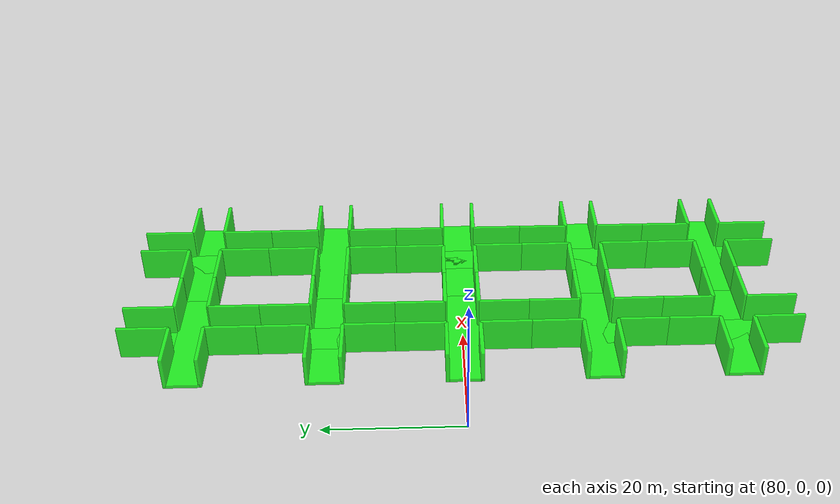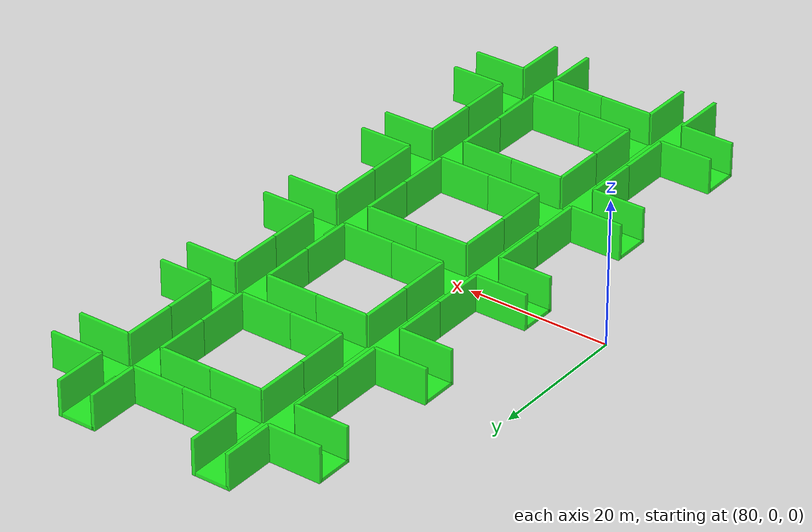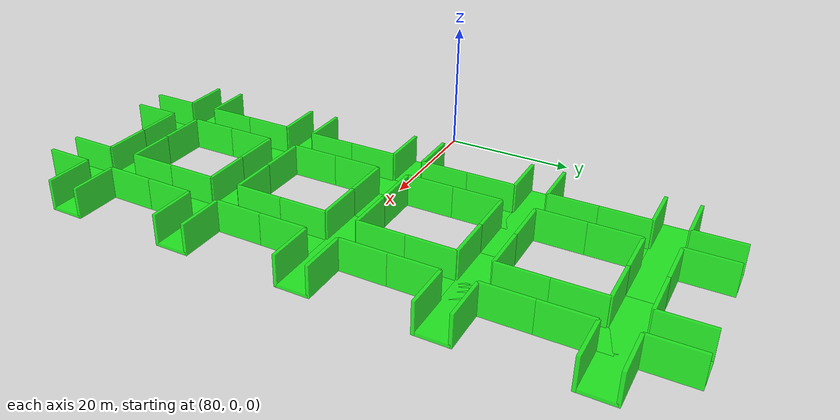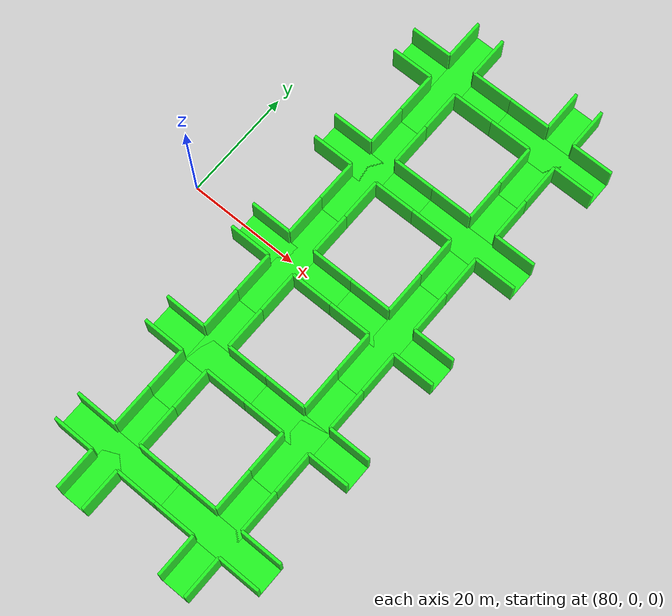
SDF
<sdf version="1.6">
 <world name="default">
  <model name="tile_21">
   <pose>100 -40 0 0 0 1.5707963267948966</pose>
   <static>true</static>
   <link name="link">
    <collision name="collision_0">
     <pose>0 0 -0.25 0 0 0</pose>
     <geometry><box><size>5 20 0.5</size></box></geometry>
    </collision>
    <visual name="visual_0">
     <pose>0 0 -0.25 0 0 0</pose>
     <geometry><box><size>5 20 0.5</size></box></geometry>
     <material><ambient>0 1 0 0.8</ambient><diffuse>0 1 0 0.8</diffuse><specular>1 1 1 0.8</specular></material>
    </visual>
    <collision name="collision_1">
     <pose>0 0 -0.25 0 0 1.57</pose>
     <geometry><box><size>5 20 0.5</size></box></geometry>
    </collision>
    <visual name="visual_1">
     <pose>0 0 -0.25 0 0 1.57</pose>
     <geometry><box><size>5 20 0.5</size></box></geometry>
     <material><ambient>0 1 0 0.8</ambient><diffuse>0 1 0 0.8</diffuse><specular>1 1 1 0.8</specular></material>
    </visual>
    <collision name="collision_2">
     <pose>-2.5 6.25 2 3.14 -1.57 0</pose>
     <geometry><box><size>5 7.5 0.5</size></box></geometry>
    </collision>
    <visual name="visual_2">
     <pose>-2.5 6.25 2 3.14 -1.57 0</pose>
     <geometry><box><size>5 7.5 0.5</size></box></geometry>
     <material><ambient>0 1 0 0.8</ambient><diffuse>0 1 0 0.8</diffuse><specular>1 1 1 0.8</specular></material>
    </visual>
    <collision name="collision_3">
     <pose>2.5 6.25 2 3.14 -1.57 0</pose>
     <geometry><box><size>5 7.5 0.5</size></box></geometry>
    </collision>
    <visual name="visual_3">
     <pose>2.5 6.25 2 3.14 -1.57 0</pose>
     <geometry><box><size>5 7.5 0.5</size></box></geometry>
     <material><ambient>0 1 0 0.8</ambient><diffuse>0 1 0 0.8</diffuse><specular>1 1 1 0.8</specular></material>
    </visual>
    <collision name="collision_4">
     <pose>-2.5 -6.25 2 3.14 -1.57 0</pose>
     <geometry><box><size>5 7.5 0.5</size></box></geometry>
    </collision>
    <visual name="visual_4">
     <pose>-2.5 -6.25 2 3.14 -1.57 0</pose>
     <geometry><box><size>5 7.5 0.5</size></box></geometry>
     <material><ambient>0 1 0 0.8</ambient><diffuse>0 1 0 0.8</diffuse><specular>1 1 1 0.8</specular></material>
    </visual>
    <collision name="collision_5">
     <pose>2.5 -6.25 2 3.14 -1.57 0</pose>
     <geometry><box><size>5 7.5 0.5</size></box></geometry>
    </collision>
    <visual name="visual_5">
     <pose>2.5 -6.25 2 3.14 -1.57 0</pose>
     <geometry><box><size>5 7.5 0.5</size></box></geometry>
     <material><ambient>0 1 0 0.8</ambient><diffuse>0 1 0 0.8</diffuse><specular>1 1 1 0.8</specular></material>
    </visual>
    <collision name="collision_6">
     <pose>6.25 2.5 2 1.57 1.57 0</pose>
     <geometry><box><size>5 7.5 0.5</size></box></geometry>
    </collision>
    <visual name="visual_6">
     <pose>6.25 2.5 2 1.57 1.57 0</pose>
     <geometry><box><size>5 7.5 0.5</size></box></geometry>
     <material><ambient>0 1 0 0.8</ambient><diffuse>0 1 0 0.8</diffuse><specular>1 1 1 0.8</specular></material>
    </visual>
    <collision name="collision_7">
     <pose>-6.25 2.5 2 1.57 1.57 0</pose>
     <geometry><box><size>5 7.5 0.5</size></box></geometry>
    </collision>
    <visual name="visual_7">
     <pose>-6.25 2.5 2 1.57 1.57 0</pose>
     <geometry><box><size>5 7.5 0.5</size></box></geometry>
     <material><ambient>0 1 0 0.8</ambient><diffuse>0 1 0 0.8</diffuse><specular>1 1 1 0.8</specular></material>
    </visual>
    <collision name="collision_8">
     <pose>6.25 -2.5 2 1.57 1.57 0</pose>
     <geometry><box><size>5 7.5 0.5</size></box></geometry>
    </collision>
    <visual name="visual_8">
     <pose>6.25 -2.5 2 1.57 1.57 0</pose>
     <geometry><box><size>5 7.5 0.5</size></box></geometry>
     <material><ambient>0 1 0 0.8</ambient><diffuse>0 1 0 0.8</diffuse><specular>1 1 1 0.8</specular></material>
    </visual>
    <collision name="collision_9">
     <pose>-6.25 -2.5 2 1.57 1.57 0</pose>
     <geometry><box><size>5 7.5 0.5</size></box></geometry>
    </collision>
    <visual name="visual_9">
     <pose>-6.25 -2.5 2 1.57 1.57 0</pose>
     <geometry><box><size>5 7.5 0.5</size></box></geometry>
     <material><ambient>0 1 0 0.8</ambient><diffuse>0 1 0 0.8</diffuse><specular>1 1 1 0.8</specular></material>
    </visual>
   </link>
  </model>
  <model name="tile_22">
   <pose>100 -20 0 0 0 -1.5707963267948966</pose>
   <static>true</static>
   <link name="link">
    <collision name="collision_0">
     <pose>0 0 -0.25 0 0 0</pose>
     <geometry><box><size>5 20 0.5</size></box></geometry>
    </collision>
    <visual name="visual_0">
     <pose>0 0 -0.25 0 0 0</pose>
     <geometry><box><size>5 20 0.5</size></box></geometry>
     <material><ambient>0 1 0 0.8</ambient><diffuse>0 1 0 0.8</diffuse><specular>1 1 1 0.8</specular></material>
    </visual>
    <collision name="collision_1">
     <pose>0 0 -0.25 0 0 1.57</pose>
     <geometry><box><size>5 20 0.5</size></box></geometry>
    </collision>
    <visual name="visual_1">
     <pose>0 0 -0.25 0 0 1.57</pose>
     <geometry><box><size>5 20 0.5</size></box></geometry>
     <material><ambient>0 1 0 0.8</ambient><diffuse>0 1 0 0.8</diffuse><specular>1 1 1 0.8</specular></material>
    </visual>
    <collision name="collision_2">
     <pose>-2.5 6.25 2 3.14 -1.57 0</pose>
     <geometry><box><size>5 7.5 0.5</size></box></geometry>
    </collision>
    <visual name="visual_2">
     <pose>-2.5 6.25 2 3.14 -1.57 0</pose>
     <geometry><box><size>5 7.5 0.5</size></box></geometry>
     <material><ambient>0 1 0 0.8</ambient><diffuse>0 1 0 0.8</diffuse><specular>1 1 1 0.8</specular></material>
    </visual>
    <collision name="collision_3">
     <pose>2.5 6.25 2 3.14 -1.57 0</pose>
     <geometry><box><size>5 7.5 0.5</size></box></geometry>
    </collision>
    <visual name="visual_3">
     <pose>2.5 6.25 2 3.14 -1.57 0</pose>
     <geometry><box><size>5 7.5 0.5</size></box></geometry>
     <material><ambient>0 1 0 0.8</ambient><diffuse>0 1 0 0.8</diffuse><specular>1 1 1 0.8</specular></material>
    </visual>
    <collision name="collision_4">
     <pose>-2.5 -6.25 2 3.14 -1.57 0</pose>
     <geometry><box><size>5 7.5 0.5</size></box></geometry>
    </collision>
    <visual name="visual_4">
     <pose>-2.5 -6.25 2 3.14 -1.57 0</pose>
     <geometry><box><size>5 7.5 0.5</size></box></geometry>
     <material><ambient>0 1 0 0.8</ambient><diffuse>0 1 0 0.8</diffuse><specular>1 1 1 0.8</specular></material>
    </visual>
    <collision name="collision_5">
     <pose>2.5 -6.25 2 3.14 -1.57 0</pose>
     <geometry><box><size>5 7.5 0.5</size></box></geometry>
    </collision>
    <visual name="visual_5">
     <pose>2.5 -6.25 2 3.14 -1.57 0</pose>
     <geometry><box><size>5 7.5 0.5</size></box></geometry>
     <material><ambient>0 1 0 0.8</ambient><diffuse>0 1 0 0.8</diffuse><specular>1 1 1 0.8</specular></material>
    </visual>
    <collision name="collision_6">
     <pose>6.25 2.5 2 1.57 1.57 0</pose>
     <geometry><box><size>5 7.5 0.5</size></box></geometry>
    </collision>
    <visual name="visual_6">
     <pose>6.25 2.5 2 1.57 1.57 0</pose>
     <geometry><box><size>5 7.5 0.5</size></box></geometry>
     <material><ambient>0 1 0 0.8</ambient><diffuse>0 1 0 0.8</diffuse><specular>1 1 1 0.8</specular></material>
    </visual>
    <collision name="collision_7">
     <pose>-6.25 2.5 2 1.57 1.57 0</pose>
     <geometry><box><size>5 7.5 0.5</size></box></geometry>
    </collision>
    <visual name="visual_7">
     <pose>-6.25 2.5 2 1.57 1.57 0</pose>
     <geometry><box><size>5 7.5 0.5</size></box></geometry>
     <material><ambient>0 1 0 0.8</ambient><diffuse>0 1 0 0.8</diffuse><specular>1 1 1 0.8</specular></material>
    </visual>
    <collision name="collision_8">
     <pose>6.25 -2.5 2 1.57 1.57 0</pose>
     <geometry><box><size>5 7.5 0.5</size></box></geometry>
    </collision>
    <visual name="visual_8">
     <pose>6.25 -2.5 2 1.57 1.57 0</pose>
     <geometry><box><size>5 7.5 0.5</size></box></geometry>
     <material><ambient>0 1 0 0.8</ambient><diffuse>0 1 0 0.8</diffuse><specular>1 1 1 0.8</specular></material>
    </visual>
    <collision name="collision_9">
     <pose>-6.25 -2.5 2 1.57 1.57 0</pose>
     <geometry><box><size>5 7.5 0.5</size></box></geometry>
    </collision>
    <visual name="visual_9">
     <pose>-6.25 -2.5 2 1.57 1.57 0</pose>
     <geometry><box><size>5 7.5 0.5</size></box></geometry>
     <material><ambient>0 1 0 0.8</ambient><diffuse>0 1 0 0.8</diffuse><specular>1 1 1 0.8</specular></material>
    </visual>
   </link>
  </model>
  <model name="tile_23">
   <pose>100 0 0 0 0 3.141592653589793</pose>
   <static>true</static>
   <link name="link">
    <collision name="collision_0">
     <pose>0 0 -0.25 0 0 0</pose>
     <geometry><box><size>5 20 0.5</size></box></geometry>
    </collision>
    <visual name="visual_0">
     <pose>0 0 -0.25 0 0 0</pose>
     <geometry><box><size>5 20 0.5</size></box></geometry>
     <material><ambient>0 1 0 0.8</ambient><diffuse>0 1 0 0.8</diffuse><specular>1 1 1 0.8</specular></material>
    </visual>
    <collision name="collision_1">
     <pose>0 0 -0.25 0 0 1.57</pose>
     <geometry><box><size>5 20 0.5</size></box></geometry>
    </collision>
    <visual name="visual_1">
     <pose>0 0 -0.25 0 0 1.57</pose>
     <geometry><box><size>5 20 0.5</size></box></geometry>
     <material><ambient>0 1 0 0.8</ambient><diffuse>0 1 0 0.8</diffuse><specular>1 1 1 0.8</specular></material>
    </visual>
    <collision name="collision_2">
     <pose>-2.5 6.25 2 3.14 -1.57 0</pose>
     <geometry><box><size>5 7.5 0.5</size></box></geometry>
    </collision>
    <visual name="visual_2">
     <pose>-2.5 6.25 2 3.14 -1.57 0</pose>
     <geometry><box><size>5 7.5 0.5</size></box></geometry>
     <material><ambient>0 1 0 0.8</ambient><diffuse>0 1 0 0.8</diffuse><specular>1 1 1 0.8</specular></material>
    </visual>
    <collision name="collision_3">
     <pose>2.5 6.25 2 3.14 -1.57 0</pose>
     <geometry><box><size>5 7.5 0.5</size></box></geometry>
    </collision>
    <visual name="visual_3">
     <pose>2.5 6.25 2 3.14 -1.57 0</pose>
     <geometry><box><size>5 7.5 0.5</size></box></geometry>
     <material><ambient>0 1 0 0.8</ambient><diffuse>0 1 0 0.8</diffuse><specular>1 1 1 0.8</specular></material>
    </visual>
    <collision name="collision_4">
     <pose>-2.5 -6.25 2 3.14 -1.57 0</pose>
     <geometry><box><size>5 7.5 0.5</size></box></geometry>
    </collision>
    <visual name="visual_4">
     <pose>-2.5 -6.25 2 3.14 -1.57 0</pose>
     <geometry><box><size>5 7.5 0.5</size></box></geometry>
     <material><ambient>0 1 0 0.8</ambient><diffuse>0 1 0 0.8</diffuse><specular>1 1 1 0.8</specular></material>
    </visual>
    <collision name="collision_5">
     <pose>2.5 -6.25 2 3.14 -1.57 0</pose>
     <geometry><box><size>5 7.5 0.5</size></box></geometry>
    </collision>
    <visual name="visual_5">
     <pose>2.5 -6.25 2 3.14 -1.57 0</pose>
     <geometry><box><size>5 7.5 0.5</size></box></geometry>
     <material><ambient>0 1 0 0.8</ambient><diffuse>0 1 0 0.8</diffuse><specular>1 1 1 0.8</specular></material>
    </visual>
    <collision name="collision_6">
     <pose>6.25 2.5 2 1.57 1.57 0</pose>
     <geometry><box><size>5 7.5 0.5</size></box></geometry>
    </collision>
    <visual name="visual_6">
     <pose>6.25 2.5 2 1.57 1.57 0</pose>
     <geometry><box><size>5 7.5 0.5</size></box></geometry>
     <material><ambient>0 1 0 0.8</ambient><diffuse>0 1 0 0.8</diffuse><specular>1 1 1 0.8</specular></material>
    </visual>
    <collision name="collision_7">
     <pose>-6.25 2.5 2 1.57 1.57 0</pose>
     <geometry><box><size>5 7.5 0.5</size></box></geometry>
    </collision>
    <visual name="visual_7">
     <pose>-6.25 2.5 2 1.57 1.57 0</pose>
     <geometry><box><size>5 7.5 0.5</size></box></geometry>
     <material><ambient>0 1 0 0.8</ambient><diffuse>0 1 0 0.8</diffuse><specular>1 1 1 0.8</specular></material>
    </visual>
    <collision name="collision_8">
     <pose>6.25 -2.5 2 1.57 1.57 0</pose>
     <geometry><box><size>5 7.5 0.5</size></box></geometry>
    </collision>
    <visual name="visual_8">
     <pose>6.25 -2.5 2 1.57 1.57 0</pose>
     <geometry><box><size>5 7.5 0.5</size></box></geometry>
     <material><ambient>0 1 0 0.8</ambient><diffuse>0 1 0 0.8</diffuse><specular>1 1 1 0.8</specular></material>
    </visual>
    <collision name="collision_9">
     <pose>-6.25 -2.5 2 1.57 1.57 0</pose>
     <geometry><box><size>5 7.5 0.5</size></box></geometry>
    </collision>
    <visual name="visual_9">
     <pose>-6.25 -2.5 2 1.57 1.57 0</pose>
     <geometry><box><size>5 7.5 0.5</size></box></geometry>
     <material><ambient>0 1 0 0.8</ambient><diffuse>0 1 0 0.8</diffuse><specular>1 1 1 0.8</specular></material>
    </visual>
   </link>
  </model>
  <model name="tile_24">
   <pose>100 20 0 0 0 0</pose>
   <static>true</static>
   <link name="link">
    <collision name="collision_0">
     <pose>0 0 -0.25 0 0 0</pose>
     <geometry><box><size>5 20 0.5</size></box></geometry>
    </collision>
    <visual name="visual_0">
     <pose>0 0 -0.25 0 0 0</pose>
     <geometry><box><size>5 20 0.5</size></box></geometry>
     <material><ambient>0 1 0 0.8</ambient><diffuse>0 1 0 0.8</diffuse><specular>1 1 1 0.8</specular></material>
    </visual>
    <collision name="collision_1">
     <pose>0 0 -0.25 0 0 1.57</pose>
     <geometry><box><size>5 20 0.5</size></box></geometry>
    </collision>
    <visual name="visual_1">
     <pose>0 0 -0.25 0 0 1.57</pose>
     <geometry><box><size>5 20 0.5</size></box></geometry>
     <material><ambient>0 1 0 0.8</ambient><diffuse>0 1 0 0.8</diffuse><specular>1 1 1 0.8</specular></material>
    </visual>
    <collision name="collision_2">
     <pose>-2.5 6.25 2 3.14 -1.57 0</pose>
     <geometry><box><size>5 7.5 0.5</size></box></geometry>
    </collision>
    <visual name="visual_2">
     <pose>-2.5 6.25 2 3.14 -1.57 0</pose>
     <geometry><box><size>5 7.5 0.5</size></box></geometry>
     <material><ambient>0 1 0 0.8</ambient><diffuse>0 1 0 0.8</diffuse><specular>1 1 1 0.8</specular></material>
    </visual>
    <collision name="collision_3">
     <pose>2.5 6.25 2 3.14 -1.57 0</pose>
     <geometry><box><size>5 7.5 0.5</size></box></geometry>
    </collision>
    <visual name="visual_3">
     <pose>2.5 6.25 2 3.14 -1.57 0</pose>
     <geometry><box><size>5 7.5 0.5</size></box></geometry>
     <material><ambient>0 1 0 0.8</ambient><diffuse>0 1 0 0.8</diffuse><specular>1 1 1 0.8</specular></material>
    </visual>
    <collision name="collision_4">
     <pose>-2.5 -6.25 2 3.14 -1.57 0</pose>
     <geometry><box><size>5 7.5 0.5</size></box></geometry>
    </collision>
    <visual name="visual_4">
     <pose>-2.5 -6.25 2 3.14 -1.57 0</pose>
     <geometry><box><size>5 7.5 0.5</size></box></geometry>
     <material><ambient>0 1 0 0.8</ambient><diffuse>0 1 0 0.8</diffuse><specular>1 1 1 0.8</specular></material>
    </visual>
    <collision name="collision_5">
     <pose>2.5 -6.25 2 3.14 -1.57 0</pose>
     <geometry><box><size>5 7.5 0.5</size></box></geometry>
    </collision>
    <visual name="visual_5">
     <pose>2.5 -6.25 2 3.14 -1.57 0</pose>
     <geometry><box><size>5 7.5 0.5</size></box></geometry>
     <material><ambient>0 1 0 0.8</ambient><diffuse>0 1 0 0.8</diffuse><specular>1 1 1 0.8</specular></material>
    </visual>
    <collision name="collision_6">
     <pose>6.25 2.5 2 1.57 1.57 0</pose>
     <geometry><box><size>5 7.5 0.5</size></box></geometry>
    </collision>
    <visual name="visual_6">
     <pose>6.25 2.5 2 1.57 1.57 0</pose>
     <geometry><box><size>5 7.5 0.5</size></box></geometry>
     <material><ambient>0 1 0 0.8</ambient><diffuse>0 1 0 0.8</diffuse><specular>1 1 1 0.8</specular></material>
    </visual>
    <collision name="collision_7">
     <pose>-6.25 2.5 2 1.57 1.57 0</pose>
     <geometry><box><size>5 7.5 0.5</size></box></geometry>
    </collision>
    <visual name="visual_7">
     <pose>-6.25 2.5 2 1.57 1.57 0</pose>
     <geometry><box><size>5 7.5 0.5</size></box></geometry>
     <material><ambient>0 1 0 0.8</ambient><diffuse>0 1 0 0.8</diffuse><specular>1 1 1 0.8</specular></material>
    </visual>
    <collision name="collision_8">
     <pose>6.25 -2.5 2 1.57 1.57 0</pose>
     <geometry><box><size>5 7.5 0.5</size></box></geometry>
    </collision>
    <visual name="visual_8">
     <pose>6.25 -2.5 2 1.57 1.57 0</pose>
     <geometry><box><size>5 7.5 0.5</size></box></geometry>
     <material><ambient>0 1 0 0.8</ambient><diffuse>0 1 0 0.8</diffuse><specular>1 1 1 0.8</specular></material>
    </visual>
    <collision name="collision_9">
     <pose>-6.25 -2.5 2 1.57 1.57 0</pose>
     <geometry><box><size>5 7.5 0.5</size></box></geometry>
    </collision>
    <visual name="visual_9">
     <pose>-6.25 -2.5 2 1.57 1.57 0</pose>
     <geometry><box><size>5 7.5 0.5</size></box></geometry>
     <material><ambient>0 1 0 0.8</ambient><diffuse>0 1 0 0.8</diffuse><specular>1 1 1 0.8</specular></material>
    </visual>
   </link>
  </model>
  <model name="tile_25">
   <pose>100 40 0 0 0 0</pose>
   <static>true</static>
   <link name="link">
    <collision name="collision_0">
     <pose>0 0 -0.25 0 0 0</pose>
     <geometry><box><size>5 20 0.5</size></box></geometry>
    </collision>
    <visual name="visual_0">
     <pose>0 0 -0.25 0 0 0</pose>
     <geometry><box><size>5 20 0.5</size></box></geometry>
     <material><ambient>0 1 0 0.8</ambient><diffuse>0 1 0 0.8</diffuse><specular>1 1 1 0.8</specular></material>
    </visual>
    <collision name="collision_1">
     <pose>0 0 -0.25 0 0 1.57</pose>
     <geometry><box><size>5 20 0.5</size></box></geometry>
    </collision>
    <visual name="visual_1">
     <pose>0 0 -0.25 0 0 1.57</pose>
     <geometry><box><size>5 20 0.5</size></box></geometry>
     <material><ambient>0 1 0 0.8</ambient><diffuse>0 1 0 0.8</diffuse><specular>1 1 1 0.8</specular></material>
    </visual>
    <collision name="collision_2">
     <pose>-2.5 6.25 2 3.14 -1.57 0</pose>
     <geometry><box><size>5 7.5 0.5</size></box></geometry>
    </collision>
    <visual name="visual_2">
     <pose>-2.5 6.25 2 3.14 -1.57 0</pose>
     <geometry><box><size>5 7.5 0.5</size></box></geometry>
     <material><ambient>0 1 0 0.8</ambient><diffuse>0 1 0 0.8</diffuse><specular>1 1 1 0.8</specular></material>
    </visual>
    <collision name="collision_3">
     <pose>2.5 6.25 2 3.14 -1.57 0</pose>
     <geometry><box><size>5 7.5 0.5</size></box></geometry>
    </collision>
    <visual name="visual_3">
     <pose>2.5 6.25 2 3.14 -1.57 0</pose>
     <geometry><box><size>5 7.5 0.5</size></box></geometry>
     <material><ambient>0 1 0 0.8</ambient><diffuse>0 1 0 0.8</diffuse><specular>1 1 1 0.8</specular></material>
    </visual>
    <collision name="collision_4">
     <pose>-2.5 -6.25 2 3.14 -1.57 0</pose>
     <geometry><box><size>5 7.5 0.5</size></box></geometry>
    </collision>
    <visual name="visual_4">
     <pose>-2.5 -6.25 2 3.14 -1.57 0</pose>
     <geometry><box><size>5 7.5 0.5</size></box></geometry>
     <material><ambient>0 1 0 0.8</ambient><diffuse>0 1 0 0.8</diffuse><specular>1 1 1 0.8</specular></material>
    </visual>
    <collision name="collision_5">
     <pose>2.5 -6.25 2 3.14 -1.57 0</pose>
     <geometry><box><size>5 7.5 0.5</size></box></geometry>
    </collision>
    <visual name="visual_5">
     <pose>2.5 -6.25 2 3.14 -1.57 0</pose>
     <geometry><box><size>5 7.5 0.5</size></box></geometry>
     <material><ambient>0 1 0 0.8</ambient><diffuse>0 1 0 0.8</diffuse><specular>1 1 1 0.8</specular></material>
    </visual>
    <collision name="collision_6">
     <pose>6.25 2.5 2 1.57 1.57 0</pose>
     <geometry><box><size>5 7.5 0.5</size></box></geometry>
    </collision>
    <visual name="visual_6">
     <pose>6.25 2.5 2 1.57 1.57 0</pose>
     <geometry><box><size>5 7.5 0.5</size></box></geometry>
     <material><ambient>0 1 0 0.8</ambient><diffuse>0 1 0 0.8</diffuse><specular>1 1 1 0.8</specular></material>
    </visual>
    <collision name="collision_7">
     <pose>-6.25 2.5 2 1.57 1.57 0</pose>
     <geometry><box><size>5 7.5 0.5</size></box></geometry>
    </collision>
    <visual name="visual_7">
     <pose>-6.25 2.5 2 1.57 1.57 0</pose>
     <geometry><box><size>5 7.5 0.5</size></box></geometry>
     <material><ambient>0 1 0 0.8</ambient><diffuse>0 1 0 0.8</diffuse><specular>1 1 1 0.8</specular></material>
    </visual>
    <collision name="collision_8">
     <pose>6.25 -2.5 2 1.57 1.57 0</pose>
     <geometry><box><size>5 7.5 0.5</size></box></geometry>
    </collision>
    <visual name="visual_8">
     <pose>6.25 -2.5 2 1.57 1.57 0</pose>
     <geometry><box><size>5 7.5 0.5</size></box></geometry>
     <material><ambient>0 1 0 0.8</ambient><diffuse>0 1 0 0.8</diffuse><specular>1 1 1 0.8</specular></material>
    </visual>
    <collision name="collision_9">
     <pose>-6.25 -2.5 2 1.57 1.57 0</pose>
     <geometry><box><size>5 7.5 0.5</size></box></geometry>
    </collision>
    <visual name="visual_9">
     <pose>-6.25 -2.5 2 1.57 1.57 0</pose>
     <geometry><box><size>5 7.5 0.5</size></box></geometry>
     <material><ambient>0 1 0 0.8</ambient><diffuse>0 1 0 0.8</diffuse><specular>1 1 1 0.8</specular></material>
    </visual>
   </link>
  </model>
  <model name="tile_26">
   <pose>120 -40 0 0 0 3.141592653589793</pose>
   <static>true</static>
   <link name="link">
    <collision name="collision_0">
     <pose>0 0 -0.25 0 0 0</pose>
     <geometry><box><size>5 20 0.5</size></box></geometry>
    </collision>
    <visual name="visual_0">
     <pose>0 0 -0.25 0 0 0</pose>
     <geometry><box><size>5 20 0.5</size></box></geometry>
     <material><ambient>0 1 0 0.8</ambient><diffuse>0 1 0 0.8</diffuse><specular>1 1 1 0.8</specular></material>
    </visual>
    <collision name="collision_1">
     <pose>0 0 -0.25 0 0 1.57</pose>
     <geometry><box><size>5 20 0.5</size></box></geometry>
    </collision>
    <visual name="visual_1">
     <pose>0 0 -0.25 0 0 1.57</pose>
     <geometry><box><size>5 20 0.5</size></box></geometry>
     <material><ambient>0 1 0 0.8</ambient><diffuse>0 1 0 0.8</diffuse><specular>1 1 1 0.8</specular></material>
    </visual>
    <collision name="collision_2">
     <pose>-2.5 6.25 2 3.14 -1.57 0</pose>
     <geometry><box><size>5 7.5 0.5</size></box></geometry>
    </collision>
    <visual name="visual_2">
     <pose>-2.5 6.25 2 3.14 -1.57 0</pose>
     <geometry><box><size>5 7.5 0.5</size></box></geometry>
     <material><ambient>0 1 0 0.8</ambient><diffuse>0 1 0 0.8</diffuse><specular>1 1 1 0.8</specular></material>
    </visual>
    <collision name="collision_3">
     <pose>2.5 6.25 2 3.14 -1.57 0</pose>
     <geometry><box><size>5 7.5 0.5</size></box></geometry>
    </collision>
    <visual name="visual_3">
     <pose>2.5 6.25 2 3.14 -1.57 0</pose>
     <geometry><box><size>5 7.5 0.5</size></box></geometry>
     <material><ambient>0 1 0 0.8</ambient><diffuse>0 1 0 0.8</diffuse><specular>1 1 1 0.8</specular></material>
    </visual>
    <collision name="collision_4">
     <pose>-2.5 -6.25 2 3.14 -1.57 0</pose>
     <geometry><box><size>5 7.5 0.5</size></box></geometry>
    </collision>
    <visual name="visual_4">
     <pose>-2.5 -6.25 2 3.14 -1.57 0</pose>
     <geometry><box><size>5 7.5 0.5</size></box></geometry>
     <material><ambient>0 1 0 0.8</ambient><diffuse>0 1 0 0.8</diffuse><specular>1 1 1 0.8</specular></material>
    </visual>
    <collision name="collision_5">
     <pose>2.5 -6.25 2 3.14 -1.57 0</pose>
     <geometry><box><size>5 7.5 0.5</size></box></geometry>
    </collision>
    <visual name="visual_5">
     <pose>2.5 -6.25 2 3.14 -1.57 0</pose>
     <geometry><box><size>5 7.5 0.5</size></box></geometry>
     <material><ambient>0 1 0 0.8</ambient><diffuse>0 1 0 0.8</diffuse><specular>1 1 1 0.8</specular></material>
    </visual>
    <collision name="collision_6">
     <pose>6.25 2.5 2 1.57 1.57 0</pose>
     <geometry><box><size>5 7.5 0.5</size></box></geometry>
    </collision>
    <visual name="visual_6">
     <pose>6.25 2.5 2 1.57 1.57 0</pose>
     <geometry><box><size>5 7.5 0.5</size></box></geometry>
     <material><ambient>0 1 0 0.8</ambient><diffuse>0 1 0 0.8</diffuse><specular>1 1 1 0.8</specular></material>
    </visual>
    <collision name="collision_7">
     <pose>-6.25 2.5 2 1.57 1.57 0</pose>
     <geometry><box><size>5 7.5 0.5</size></box></geometry>
    </collision>
    <visual name="visual_7">
     <pose>-6.25 2.5 2 1.57 1.57 0</pose>
     <geometry><box><size>5 7.5 0.5</size></box></geometry>
     <material><ambient>0 1 0 0.8</ambient><diffuse>0 1 0 0.8</diffuse><specular>1 1 1 0.8</specular></material>
    </visual>
    <collision name="collision_8">
     <pose>6.25 -2.5 2 1.57 1.57 0</pose>
     <geometry><box><size>5 7.5 0.5</size></box></geometry>
    </collision>
    <visual name="visual_8">
     <pose>6.25 -2.5 2 1.57 1.57 0</pose>
     <geometry><box><size>5 7.5 0.5</size></box></geometry>
     <material><ambient>0 1 0 0.8</ambient><diffuse>0 1 0 0.8</diffuse><specular>1 1 1 0.8</specular></material>
    </visual>
    <collision name="collision_9">
     <pose>-6.25 -2.5 2 1.57 1.57 0</pose>
     <geometry><box><size>5 7.5 0.5</size></box></geometry>
    </collision>
    <visual name="visual_9">
     <pose>-6.25 -2.5 2 1.57 1.57 0</pose>
     <geometry><box><size>5 7.5 0.5</size></box></geometry>
     <material><ambient>0 1 0 0.8</ambient><diffuse>0 1 0 0.8</diffuse><specular>1 1 1 0.8</specular></material>
    </visual>
   </link>
  </model>
  <model name="tile_27">
   <pose>120 -20 0 0 0 3.141592653589793</pose>
   <static>true</static>
   <link name="link">
    <collision name="collision_0">
     <pose>0 0 -0.25 0 0 0</pose>
     <geometry><box><size>5 20 0.5</size></box></geometry>
    </collision>
    <visual name="visual_0">
     <pose>0 0 -0.25 0 0 0</pose>
     <geometry><box><size>5 20 0.5</size></box></geometry>
     <material><ambient>0 1 0 0.8</ambient><diffuse>0 1 0 0.8</diffuse><specular>1 1 1 0.8</specular></material>
    </visual>
    <collision name="collision_1">
     <pose>0 0 -0.25 0 0 1.57</pose>
     <geometry><box><size>5 20 0.5</size></box></geometry>
    </collision>
    <visual name="visual_1">
     <pose>0 0 -0.25 0 0 1.57</pose>
     <geometry><box><size>5 20 0.5</size></box></geometry>
     <material><ambient>0 1 0 0.8</ambient><diffuse>0 1 0 0.8</diffuse><specular>1 1 1 0.8</specular></material>
    </visual>
    <collision name="collision_2">
     <pose>-2.5 6.25 2 3.14 -1.57 0</pose>
     <geometry><box><size>5 7.5 0.5</size></box></geometry>
    </collision>
    <visual name="visual_2">
     <pose>-2.5 6.25 2 3.14 -1.57 0</pose>
     <geometry><box><size>5 7.5 0.5</size></box></geometry>
     <material><ambient>0 1 0 0.8</ambient><diffuse>0 1 0 0.8</diffuse><specular>1 1 1 0.8</specular></material>
    </visual>
    <collision name="collision_3">
     <pose>2.5 6.25 2 3.14 -1.57 0</pose>
     <geometry><box><size>5 7.5 0.5</size></box></geometry>
    </collision>
    <visual name="visual_3">
     <pose>2.5 6.25 2 3.14 -1.57 0</pose>
     <geometry><box><size>5 7.5 0.5</size></box></geometry>
     <material><ambient>0 1 0 0.8</ambient><diffuse>0 1 0 0.8</diffuse><specular>1 1 1 0.8</specular></material>
    </visual>
    <collision name="collision_4">
     <pose>-2.5 -6.25 2 3.14 -1.57 0</pose>
     <geometry><box><size>5 7.5 0.5</size></box></geometry>
    </collision>
    <visual name="visual_4">
     <pose>-2.5 -6.25 2 3.14 -1.57 0</pose>
     <geometry><box><size>5 7.5 0.5</size></box></geometry>
     <material><ambient>0 1 0 0.8</ambient><diffuse>0 1 0 0.8</diffuse><specular>1 1 1 0.8</specular></material>
    </visual>
    <collision name="collision_5">
     <pose>2.5 -6.25 2 3.14 -1.57 0</pose>
     <geometry><box><size>5 7.5 0.5</size></box></geometry>
    </collision>
    <visual name="visual_5">
     <pose>2.5 -6.25 2 3.14 -1.57 0</pose>
     <geometry><box><size>5 7.5 0.5</size></box></geometry>
     <material><ambient>0 1 0 0.8</ambient><diffuse>0 1 0 0.8</diffuse><specular>1 1 1 0.8</specular></material>
    </visual>
    <collision name="collision_6">
     <pose>6.25 2.5 2 1.57 1.57 0</pose>
     <geometry><box><size>5 7.5 0.5</size></box></geometry>
    </collision>
    <visual name="visual_6">
     <pose>6.25 2.5 2 1.57 1.57 0</pose>
     <geometry><box><size>5 7.5 0.5</size></box></geometry>
     <material><ambient>0 1 0 0.8</ambient><diffuse>0 1 0 0.8</diffuse><specular>1 1 1 0.8</specular></material>
    </visual>
    <collision name="collision_7">
     <pose>-6.25 2.5 2 1.57 1.57 0</pose>
     <geometry><box><size>5 7.5 0.5</size></box></geometry>
    </collision>
    <visual name="visual_7">
     <pose>-6.25 2.5 2 1.57 1.57 0</pose>
     <geometry><box><size>5 7.5 0.5</size></box></geometry>
     <material><ambient>0 1 0 0.8</ambient><diffuse>0 1 0 0.8</diffuse><specular>1 1 1 0.8</specular></material>
    </visual>
    <collision name="collision_8">
     <pose>6.25 -2.5 2 1.57 1.57 0</pose>
     <geometry><box><size>5 7.5 0.5</size></box></geometry>
    </collision>
    <visual name="visual_8">
     <pose>6.25 -2.5 2 1.57 1.57 0</pose>
     <geometry><box><size>5 7.5 0.5</size></box></geometry>
     <material><ambient>0 1 0 0.8</ambient><diffuse>0 1 0 0.8</diffuse><specular>1 1 1 0.8</specular></material>
    </visual>
    <collision name="collision_9">
     <pose>-6.25 -2.5 2 1.57 1.57 0</pose>
     <geometry><box><size>5 7.5 0.5</size></box></geometry>
    </collision>
    <visual name="visual_9">
     <pose>-6.25 -2.5 2 1.57 1.57 0</pose>
     <geometry><box><size>5 7.5 0.5</size></box></geometry>
     <material><ambient>0 1 0 0.8</ambient><diffuse>0 1 0 0.8</diffuse><specular>1 1 1 0.8</specular></material>
    </visual>
   </link>
  </model>
  <model name="tile_28">
   <pose>120 0 0 0 0 3.141592653589793</pose>
   <static>true</static>
   <link name="link">
    <collision name="collision_0">
     <pose>0 0 -0.25 0 0 0</pose>
     <geometry><box><size>5 20 0.5</size></box></geometry>
    </collision>
    <visual name="visual_0">
     <pose>0 0 -0.25 0 0 0</pose>
     <geometry><box><size>5 20 0.5</size></box></geometry>
     <material><ambient>0 1 0 0.8</ambient><diffuse>0 1 0 0.8</diffuse><specular>1 1 1 0.8</specular></material>
    </visual>
    <collision name="collision_1">
     <pose>0 0 -0.25 0 0 1.57</pose>
     <geometry><box><size>5 20 0.5</size></box></geometry>
    </collision>
    <visual name="visual_1">
     <pose>0 0 -0.25 0 0 1.57</pose>
     <geometry><box><size>5 20 0.5</size></box></geometry>
     <material><ambient>0 1 0 0.8</ambient><diffuse>0 1 0 0.8</diffuse><specular>1 1 1 0.8</specular></material>
    </visual>
    <collision name="collision_2">
     <pose>-2.5 6.25 2 3.14 -1.57 0</pose>
     <geometry><box><size>5 7.5 0.5</size></box></geometry>
    </collision>
    <visual name="visual_2">
     <pose>-2.5 6.25 2 3.14 -1.57 0</pose>
     <geometry><box><size>5 7.5 0.5</size></box></geometry>
     <material><ambient>0 1 0 0.8</ambient><diffuse>0 1 0 0.8</diffuse><specular>1 1 1 0.8</specular></material>
    </visual>
    <collision name="collision_3">
     <pose>2.5 6.25 2 3.14 -1.57 0</pose>
     <geometry><box><size>5 7.5 0.5</size></box></geometry>
    </collision>
    <visual name="visual_3">
     <pose>2.5 6.25 2 3.14 -1.57 0</pose>
     <geometry><box><size>5 7.5 0.5</size></box></geometry>
     <material><ambient>0 1 0 0.8</ambient><diffuse>0 1 0 0.8</diffuse><specular>1 1 1 0.8</specular></material>
    </visual>
    <collision name="collision_4">
     <pose>-2.5 -6.25 2 3.14 -1.57 0</pose>
     <geometry><box><size>5 7.5 0.5</size></box></geometry>
    </collision>
    <visual name="visual_4">
     <pose>-2.5 -6.25 2 3.14 -1.57 0</pose>
     <geometry><box><size>5 7.5 0.5</size></box></geometry>
     <material><ambient>0 1 0 0.8</ambient><diffuse>0 1 0 0.8</diffuse><specular>1 1 1 0.8</specular></material>
    </visual>
    <collision name="collision_5">
     <pose>2.5 -6.25 2 3.14 -1.57 0</pose>
     <geometry><box><size>5 7.5 0.5</size></box></geometry>
    </collision>
    <visual name="visual_5">
     <pose>2.5 -6.25 2 3.14 -1.57 0</pose>
     <geometry><box><size>5 7.5 0.5</size></box></geometry>
     <material><ambient>0 1 0 0.8</ambient><diffuse>0 1 0 0.8</diffuse><specular>1 1 1 0.8</specular></material>
    </visual>
    <collision name="collision_6">
     <pose>6.25 2.5 2 1.57 1.57 0</pose>
     <geometry><box><size>5 7.5 0.5</size></box></geometry>
    </collision>
    <visual name="visual_6">
     <pose>6.25 2.5 2 1.57 1.57 0</pose>
     <geometry><box><size>5 7.5 0.5</size></box></geometry>
     <material><ambient>0 1 0 0.8</ambient><diffuse>0 1 0 0.8</diffuse><specular>1 1 1 0.8</specular></material>
    </visual>
    <collision name="collision_7">
     <pose>-6.25 2.5 2 1.57 1.57 0</pose>
     <geometry><box><size>5 7.5 0.5</size></box></geometry>
    </collision>
    <visual name="visual_7">
     <pose>-6.25 2.5 2 1.57 1.57 0</pose>
     <geometry><box><size>5 7.5 0.5</size></box></geometry>
     <material><ambient>0 1 0 0.8</ambient><diffuse>0 1 0 0.8</diffuse><specular>1 1 1 0.8</specular></material>
    </visual>
    <collision name="collision_8">
     <pose>6.25 -2.5 2 1.57 1.57 0</pose>
     <geometry><box><size>5 7.5 0.5</size></box></geometry>
    </collision>
    <visual name="visual_8">
     <pose>6.25 -2.5 2 1.57 1.57 0</pose>
     <geometry><box><size>5 7.5 0.5</size></box></geometry>
     <material><ambient>0 1 0 0.8</ambient><diffuse>0 1 0 0.8</diffuse><specular>1 1 1 0.8</specular></material>
    </visual>
    <collision name="collision_9">
     <pose>-6.25 -2.5 2 1.57 1.57 0</pose>
     <geometry><box><size>5 7.5 0.5</size></box></geometry>
    </collision>
    <visual name="visual_9">
     <pose>-6.25 -2.5 2 1.57 1.57 0</pose>
     <geometry><box><size>5 7.5 0.5</size></box></geometry>
     <material><ambient>0 1 0 0.8</ambient><diffuse>0 1 0 0.8</diffuse><specular>1 1 1 0.8</specular></material>
    </visual>
   </link>
  </model>
  <model name="tile_29">
   <pose>120 20 0 0 0 -1.5707963267948966</pose>
   <static>true</static>
   <link name="link">
    <collision name="collision_0">
     <pose>0 0 -0.25 0 0 0</pose>
     <geometry><box><size>5 20 0.5</size></box></geometry>
    </collision>
    <visual name="visual_0">
     <pose>0 0 -0.25 0 0 0</pose>
     <geometry><box><size>5 20 0.5</size></box></geometry>
     <material><ambient>0 1 0 0.8</ambient><diffuse>0 1 0 0.8</diffuse><specular>1 1 1 0.8</specular></material>
    </visual>
    <collision name="collision_1">
     <pose>0 0 -0.25 0 0 1.57</pose>
     <geometry><box><size>5 20 0.5</size></box></geometry>
    </collision>
    <visual name="visual_1">
     <pose>0 0 -0.25 0 0 1.57</pose>
     <geometry><box><size>5 20 0.5</size></box></geometry>
     <material><ambient>0 1 0 0.8</ambient><diffuse>0 1 0 0.8</diffuse><specular>1 1 1 0.8</specular></material>
    </visual>
    <collision name="collision_2">
     <pose>-2.5 6.25 2 3.14 -1.57 0</pose>
     <geometry><box><size>5 7.5 0.5</size></box></geometry>
    </collision>
    <visual name="visual_2">
     <pose>-2.5 6.25 2 3.14 -1.57 0</pose>
     <geometry><box><size>5 7.5 0.5</size></box></geometry>
     <material><ambient>0 1 0 0.8</ambient><diffuse>0 1 0 0.8</diffuse><specular>1 1 1 0.8</specular></material>
    </visual>
    <collision name="collision_3">
     <pose>2.5 6.25 2 3.14 -1.57 0</pose>
     <geometry><box><size>5 7.5 0.5</size></box></geometry>
    </collision>
    <visual name="visual_3">
     <pose>2.5 6.25 2 3.14 -1.57 0</pose>
     <geometry><box><size>5 7.5 0.5</size></box></geometry>
     <material><ambient>0 1 0 0.8</ambient><diffuse>0 1 0 0.8</diffuse><specular>1 1 1 0.8</specular></material>
    </visual>
    <collision name="collision_4">
     <pose>-2.5 -6.25 2 3.14 -1.57 0</pose>
     <geometry><box><size>5 7.5 0.5</size></box></geometry>
    </collision>
    <visual name="visual_4">
     <pose>-2.5 -6.25 2 3.14 -1.57 0</pose>
     <geometry><box><size>5 7.5 0.5</size></box></geometry>
     <material><ambient>0 1 0 0.8</ambient><diffuse>0 1 0 0.8</diffuse><specular>1 1 1 0.8</specular></material>
    </visual>
    <collision name="collision_5">
     <pose>2.5 -6.25 2 3.14 -1.57 0</pose>
     <geometry><box><size>5 7.5 0.5</size></box></geometry>
    </collision>
    <visual name="visual_5">
     <pose>2.5 -6.25 2 3.14 -1.57 0</pose>
     <geometry><box><size>5 7.5 0.5</size></box></geometry>
     <material><ambient>0 1 0 0.8</ambient><diffuse>0 1 0 0.8</diffuse><specular>1 1 1 0.8</specular></material>
    </visual>
    <collision name="collision_6">
     <pose>6.25 2.5 2 1.57 1.57 0</pose>
     <geometry><box><size>5 7.5 0.5</size></box></geometry>
    </collision>
    <visual name="visual_6">
     <pose>6.25 2.5 2 1.57 1.57 0</pose>
     <geometry><box><size>5 7.5 0.5</size></box></geometry>
     <material><ambient>0 1 0 0.8</ambient><diffuse>0 1 0 0.8</diffuse><specular>1 1 1 0.8</specular></material>
    </visual>
    <collision name="collision_7">
     <pose>-6.25 2.5 2 1.57 1.57 0</pose>
     <geometry><box><size>5 7.5 0.5</size></box></geometry>
    </collision>
    <visual name="visual_7">
     <pose>-6.25 2.5 2 1.57 1.57 0</pose>
     <geometry><box><size>5 7.5 0.5</size></box></geometry>
     <material><ambient>0 1 0 0.8</ambient><diffuse>0 1 0 0.8</diffuse><specular>1 1 1 0.8</specular></material>
    </visual>
    <collision name="collision_8">
     <pose>6.25 -2.5 2 1.57 1.57 0</pose>
     <geometry><box><size>5 7.5 0.5</size></box></geometry>
    </collision>
    <visual name="visual_8">
     <pose>6.25 -2.5 2 1.57 1.57 0</pose>
     <geometry><box><size>5 7.5 0.5</size></box></geometry>
     <material><ambient>0 1 0 0.8</ambient><diffuse>0 1 0 0.8</diffuse><specular>1 1 1 0.8</specular></material>
    </visual>
    <collision name="collision_9">
     <pose>-6.25 -2.5 2 1.57 1.57 0</pose>
     <geometry><box><size>5 7.5 0.5</size></box></geometry>
    </collision>
    <visual name="visual_9">
     <pose>-6.25 -2.5 2 1.57 1.57 0</pose>
     <geometry><box><size>5 7.5 0.5</size></box></geometry>
     <material><ambient>0 1 0 0.8</ambient><diffuse>0 1 0 0.8</diffuse><specular>1 1 1 0.8</specular></material>
    </visual>
   </link>
  </model>
  <model name="tile_30">
   <pose>120 40 0 0 0 1.5707963267948966</pose>
   <static>true</static>
   <link name="link">
    <collision name="collision_0">
     <pose>0 0 -0.25 0 0 0</pose>
     <geometry><box><size>5 20 0.5</size></box></geometry>
    </collision>
    <visual name="visual_0">
     <pose>0 0 -0.25 0 0 0</pose>
     <geometry><box><size>5 20 0.5</size></box></geometry>
     <material><ambient>0 1 0 0.8</ambient><diffuse>0 1 0 0.8</diffuse><specular>1 1 1 0.8</specular></material>
    </visual>
    <collision name="collision_1">
     <pose>0 0 -0.25 0 0 1.57</pose>
     <geometry><box><size>5 20 0.5</size></box></geometry>
    </collision>
    <visual name="visual_1">
     <pose>0 0 -0.25 0 0 1.57</pose>
     <geometry><box><size>5 20 0.5</size></box></geometry>
     <material><ambient>0 1 0 0.8</ambient><diffuse>0 1 0 0.8</diffuse><specular>1 1 1 0.8</specular></material>
    </visual>
    <collision name="collision_2">
     <pose>-2.5 6.25 2 3.14 -1.57 0</pose>
     <geometry><box><size>5 7.5 0.5</size></box></geometry>
    </collision>
    <visual name="visual_2">
     <pose>-2.5 6.25 2 3.14 -1.57 0</pose>
     <geometry><box><size>5 7.5 0.5</size></box></geometry>
     <material><ambient>0 1 0 0.8</ambient><diffuse>0 1 0 0.8</diffuse><specular>1 1 1 0.8</specular></material>
    </visual>
    <collision name="collision_3">
     <pose>2.5 6.25 2 3.14 -1.57 0</pose>
     <geometry><box><size>5 7.5 0.5</size></box></geometry>
    </collision>
    <visual name="visual_3">
     <pose>2.5 6.25 2 3.14 -1.57 0</pose>
     <geometry><box><size>5 7.5 0.5</size></box></geometry>
     <material><ambient>0 1 0 0.8</ambient><diffuse>0 1 0 0.8</diffuse><specular>1 1 1 0.8</specular></material>
    </visual>
    <collision name="collision_4">
     <pose>-2.5 -6.25 2 3.14 -1.57 0</pose>
     <geometry><box><size>5 7.5 0.5</size></box></geometry>
    </collision>
    <visual name="visual_4">
     <pose>-2.5 -6.25 2 3.14 -1.57 0</pose>
     <geometry><box><size>5 7.5 0.5</size></box></geometry>
     <material><ambient>0 1 0 0.8</ambient><diffuse>0 1 0 0.8</diffuse><specular>1 1 1 0.8</specular></material>
    </visual>
    <collision name="collision_5">
     <pose>2.5 -6.25 2 3.14 -1.57 0</pose>
     <geometry><box><size>5 7.5 0.5</size></box></geometry>
    </collision>
    <visual name="visual_5">
     <pose>2.5 -6.25 2 3.14 -1.57 0</pose>
     <geometry><box><size>5 7.5 0.5</size></box></geometry>
     <material><ambient>0 1 0 0.8</ambient><diffuse>0 1 0 0.8</diffuse><specular>1 1 1 0.8</specular></material>
    </visual>
    <collision name="collision_6">
     <pose>6.25 2.5 2 1.57 1.57 0</pose>
     <geometry><box><size>5 7.5 0.5</size></box></geometry>
    </collision>
    <visual name="visual_6">
     <pose>6.25 2.5 2 1.57 1.57 0</pose>
     <geometry><box><size>5 7.5 0.5</size></box></geometry>
     <material><ambient>0 1 0 0.8</ambient><diffuse>0 1 0 0.8</diffuse><specular>1 1 1 0.8</specular></material>
    </visual>
    <collision name="collision_7">
     <pose>-6.25 2.5 2 1.57 1.57 0</pose>
     <geometry><box><size>5 7.5 0.5</size></box></geometry>
    </collision>
    <visual name="visual_7">
     <pose>-6.25 2.5 2 1.57 1.57 0</pose>
     <geometry><box><size>5 7.5 0.5</size></box></geometry>
     <material><ambient>0 1 0 0.8</ambient><diffuse>0 1 0 0.8</diffuse><specular>1 1 1 0.8</specular></material>
    </visual>
    <collision name="collision_8">
     <pose>6.25 -2.5 2 1.57 1.57 0</pose>
     <geometry><box><size>5 7.5 0.5</size></box></geometry>
    </collision>
    <visual name="visual_8">
     <pose>6.25 -2.5 2 1.57 1.57 0</pose>
     <geometry><box><size>5 7.5 0.5</size></box></geometry>
     <material><ambient>0 1 0 0.8</ambient><diffuse>0 1 0 0.8</diffuse><specular>1 1 1 0.8</specular></material>
    </visual>
    <collision name="collision_9">
     <pose>-6.25 -2.5 2 1.57 1.57 0</pose>
     <geometry><box><size>5 7.5 0.5</size></box></geometry>
    </collision>
    <visual name="visual_9">
     <pose>-6.25 -2.5 2 1.57 1.57 0</pose>
     <geometry><box><size>5 7.5 0.5</size></box></geometry>
     <material><ambient>0 1 0 0.8</ambient><diffuse>0 1 0 0.8</diffuse><specular>1 1 1 0.8</specular></material>
    </visual>
   </link>
  </model>
 </world>
</sdf>
